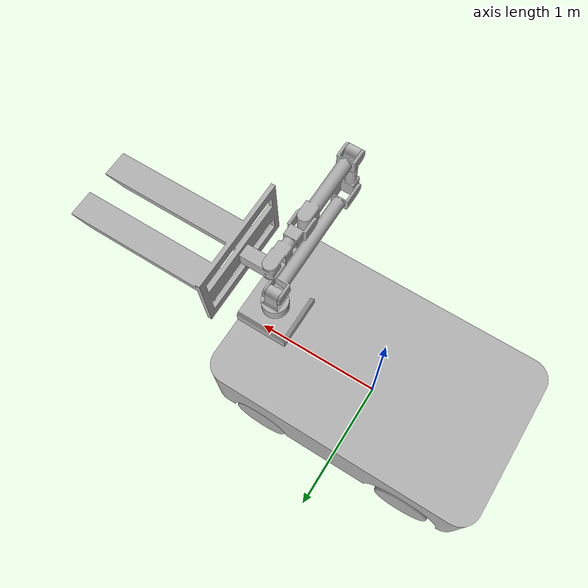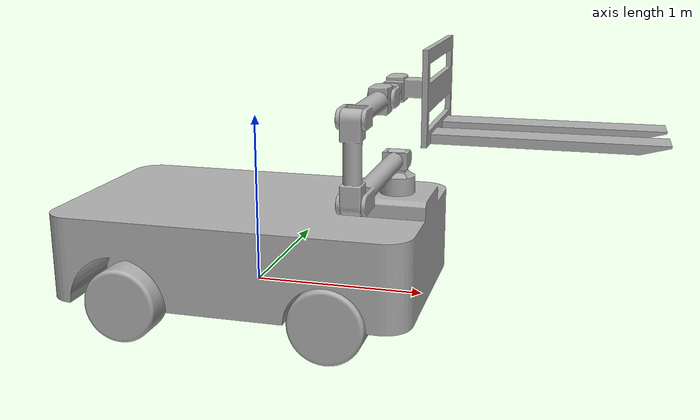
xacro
<?xml version="1.0" ?>
<robot name="forklift_robot" xmlns:xacro="http://www.ros.org/wiki/xacro">

<xacro:include filename="$(find forklift_robot_description)/urdf/materials.xacro" />
<xacro:include filename="$(find forklift_robot_description)/urdf/forklift_robot.trans" />
<xacro:include filename="$(find forklift_robot_description)/urdf/forklift_robot.gazebo" />
<link name="base_link">
  <inertial>
    <origin xyz="0.04023799417719452 2.4525300764303177e-16 0.27062069281074946" rpy="0 0 0"/>
    <mass value="109.05654375999"/>
    <inertia ixx="0.373447" iyy="1.713046" izz="9.537133" ixy="0.0" iyz="-0.0" ixz="0.00933119"/>
  </inertial>
  <visual>
    <origin xyz="0 0 0" rpy="0 0 0"/>
    <geometry>
      <mesh filename="package://forklift_robot_description/meshes/base_link.stl" scale="0.001 0.001 0.001"/>
    </geometry>
    <material name="silver"/>
  </visual>
  <collision>
    <origin xyz="0 0 0" rpy="0 0 0"/>
    <geometry>
      <mesh filename="package://forklift_robot_description/meshes/base_link.stl" scale="0.001 0.001 0.001"/>
    </geometry>
  </collision>
</link>

<link name="link_1_1">
  <inertial>
    <origin xyz="0.04799163613302859 -0.48926311595346855 9.992007221626409e-16" rpy="0 0 0"/>
    <mass value="0.79210110942673"/>
    <inertia ixx="0.000294" iyy="0.000158" izz="0.000328" ixy="-1e-06" iyz="-6e-06" ixz="-3.4e-05"/>
  </inertial>
  <visual>
    <origin xyz="-0.802 -0.0 -0.8" rpy="0 0 0"/>
    <geometry>
      <mesh filename="package://forklift_robot_description/meshes/link_1_1.stl" scale="0.001 0.001 0.001"/>
    </geometry>
    <material name="silver"/>
  </visual>
  <collision>
    <origin xyz="-0.802 -0.0 -0.8" rpy="0 0 0"/>
    <geometry>
      <mesh filename="package://forklift_robot_description/meshes/link_1_1.stl" scale="0.001 0.001 0.001"/>
    </geometry>
  </collision>
</link>

<link name="link_2_1">
  <inertial>
    <origin xyz="0.04801527849205145 7.951052003907222e-06 0.2000311805960242" rpy="0 0 0"/>
    <mass value="0.636986428830017"/>
    <inertia ixx="0.000294" iyy="0.000158" izz="0.000328" ixy="-1e-06" iyz="-6e-06" ixz="-3.4e-05"/>
  </inertial>
  <visual>
    <origin xyz="-0.802 1.0 -0.8" rpy="0 0 0"/>
    <geometry>
      <mesh filename="package://forklift_robot_description/meshes/link_2_1.stl" scale="0.001 0.001 0.001"/>
    </geometry>
    <material name="silver"/>
  </visual>
  <collision>
    <origin xyz="-0.802 1.0 -0.8" rpy="0 0 0"/>
    <geometry>
      <mesh filename="package://forklift_robot_description/meshes/link_2_1.stl" scale="0.001 0.001 0.001"/>
    </geometry>
  </collision>
</link>

<link name="link_3_1">
  <inertial>
    <origin xyz="0.04798957458703079 0.3625542865222178 -1.176836406102666e-14" rpy="0 0 0"/>
    <mass value="0.88579388998393"/>
    <inertia ixx="0.000294" iyy="0.000158" izz="0.000328" ixy="-1e-06" iyz="-6e-06" ixz="-3.4e-05"/>
  </inertial>
  <visual>
    <origin xyz="-0.802 1.0 -1.2" rpy="0 0 0"/>
    <geometry>
      <mesh filename="package://forklift_robot_description/meshes/link_3_1.stl" scale="0.001 0.001 0.001"/>
    </geometry>
    <material name="silver"/>
  </visual>
  <collision>
    <origin xyz="-0.802 1.0 -1.2" rpy="0 0 0"/>
    <geometry>
      <mesh filename="package://forklift_robot_description/meshes/link_3_1.stl" scale="0.001 0.001 0.001"/>
    </geometry>
  </collision>
</link>

<link name="link_4_1">
  <inertial>
    <origin xyz="-0.047989862163200114 0.19822125424130696 1.0137836775614417e-05" rpy="0 0 0"/>
    <mass value="0.839673850383303"/>
    <inertia ixx="0.000294" iyy="0.000158" izz="0.000328" ixy="-1e-06" iyz="-6e-06" ixz="-3.4e-05"/>
  </inertial>
  <visual>
    <origin xyz="-0.898 0.4 -1.2" rpy="0 0 0"/>
    <geometry>
      <mesh filename="package://forklift_robot_description/meshes/link_4_1.stl" scale="0.001 0.001 0.001"/>
    </geometry>
    <material name="silver"/>
  </visual>
  <collision>
    <origin xyz="-0.898 0.4 -1.2" rpy="0 0 0"/>
    <geometry>
      <mesh filename="package://forklift_robot_description/meshes/link_4_1.stl" scale="0.001 0.001 0.001"/>
    </geometry>
  </collision>
</link>

<link name="link_5_1">
  <inertial>
    <origin xyz="0.08003886285179851 -1.2970589922740741e-05 -0.04801214338240478" rpy="0 0 0"/>
    <mass value="0.633132672522482"/>
    <inertia ixx="0.000294" iyy="0.000158" izz="0.000328" ixy="-1e-06" iyz="-6e-06" ixz="-3.4e-05"/>
  </inertial>
  <visual>
    <origin xyz="-0.85 0.0 -1.248" rpy="0 0 0"/>
    <geometry>
      <mesh filename="package://forklift_robot_description/meshes/link_5_1.stl" scale="0.001 0.001 0.001"/>
    </geometry>
    <material name="silver"/>
  </visual>
  <collision>
    <origin xyz="-0.85 0.0 -1.248" rpy="0 0 0"/>
    <geometry>
      <mesh filename="package://forklift_robot_description/meshes/link_5_1.stl" scale="0.001 0.001 0.001"/>
    </geometry>
  </collision>
</link>

<link name="link_6_1">
  <inertial>
    <origin xyz="0.4518032682817148 0.009999999999998925 -0.16720601381296496" rpy="0 0 0"/>
    <mass value="0.25015607092092"/>
    <inertia ixx="0.000294" iyy="0.000158" izz="0.000328" ixy="-1e-06" iyz="-6e-06" ixz="-3.4e-05"/>
  </inertial>
  <visual>
    <origin xyz="-1.052 0.0 -1.2" rpy="0 0 0"/>
    <geometry>
      <mesh filename="package://forklift_robot_description/meshes/link_6_1.stl" scale="0.001 0.001 0.001"/>
    </geometry>
    <material name="silver"/>
  </visual>
  <collision>
    <origin xyz="-1.052 0.0 -1.2" rpy="0 0 0"/>
    <geometry>
      <mesh filename="package://forklift_robot_description/meshes/link_6_1.stl" scale="0.001 0.001 0.001"/>
    </geometry>
  </collision>
</link>

<link name="arm_base_1">
  <inertial>
    <origin xyz="6.663484238389472e-06 5.680544369622464e-16 0.08518510752494468" rpy="0 0 0"/>
    <mass value="0.269722296455804"/>
    <inertia ixx="0.000294" iyy="0.000158" izz="0.000328" ixy="-1e-06" iyz="-6e-06" ixz="-3.4e-05"/>
  </inertial>
  <visual>
    <origin xyz="-0.85 -0.0 -0.602" rpy="0 0 0"/>
    <geometry>
      <mesh filename="package://forklift_robot_description/meshes/arm_base_1.stl" scale="0.001 0.001 0.001"/>
    </geometry>
    <material name="silver"/>
  </visual>
  <collision>
    <origin xyz="-0.85 -0.0 -0.602" rpy="0 0 0"/>
    <geometry>
      <mesh filename="package://forklift_robot_description/meshes/arm_base_1.stl" scale="0.001 0.001 0.001"/>
    </geometry>
  </collision>
</link>

<link name="left_rear_wheel_1">
  <inertial>
    <origin xyz="0.0 0.10074491716164286 3.6327738750962685e-17" rpy="0 0 0"/>
    <mass value="4.15770588809661"/>
    <inertia ixx="0.000294" iyy="0.000158" izz="0.000328" ixy="-1e-06" iyz="-6e-06" ixz="-3.4e-05"/>
  </inertial>
  <visual>
    <origin xyz="0.6 -0.45 -0.0" rpy="0 0 0"/>
    <geometry>
      <mesh filename="package://forklift_robot_description/meshes/left_rear_wheel_1.stl" scale="0.001 0.001 0.001"/>
    </geometry>
    <material name="silver"/>
  </visual>
  <collision>
    <origin xyz="0.6 -0.45 -0.0" rpy="0 0 0"/>
    <geometry>
      <mesh filename="package://forklift_robot_description/meshes/left_rear_wheel_1.stl" scale="0.001 0.001 0.001"/>
    </geometry>
  </collision>
</link>

<link name="left_front_wheel_1">
  <inertial>
    <origin xyz="0.0 0.10074491716164286 -1.7239418987856801e-16" rpy="0 0 0"/>
    <mass value="4.15770588809661"/>
    <inertia ixx="0.000294" iyy="0.000158" izz="0.000328" ixy="-1e-06" iyz="-6e-06" ixz="-3.4e-05"/>
  </inertial>
  <visual>
    <origin xyz="-0.6 -0.45 -0.0" rpy="0 0 0"/>
    <geometry>
      <mesh filename="package://forklift_robot_description/meshes/left_front_wheel_1.stl" scale="0.001 0.001 0.001"/>
    </geometry>
    <material name="silver"/>
  </visual>
  <collision>
    <origin xyz="-0.6 -0.45 -0.0" rpy="0 0 0"/>
    <geometry>
      <mesh filename="package://forklift_robot_description/meshes/left_front_wheel_1.stl" scale="0.001 0.001 0.001"/>
    </geometry>
  </collision>
</link>

<link name="right_front_wheel_1">
  <inertial>
    <origin xyz="0.0 -0.1007449171616433 -2.539314515774933e-16" rpy="0 0 0"/>
    <mass value="4.15770588809661"/>
    <inertia ixx="0.000294" iyy="0.000158" izz="0.000328" ixy="-1e-06" iyz="-6e-06" ixz="-3.4e-05"/>
  </inertial>
  <visual>
    <origin xyz="-0.6 0.45 -0.0" rpy="0 0 0"/>
    <geometry>
      <mesh filename="package://forklift_robot_description/meshes/right_front_wheel_1.stl" scale="0.001 0.001 0.001"/>
    </geometry>
    <material name="silver"/>
  </visual>
  <collision>
    <origin xyz="-0.6 0.45 -0.0" rpy="0 0 0"/>
    <geometry>
      <mesh filename="package://forklift_robot_description/meshes/right_front_wheel_1.stl" scale="0.001 0.001 0.001"/>
    </geometry>
  </collision>
</link>

<link name="right_rear_wheel_1">
  <inertial>
    <origin xyz="0.0 -0.1007449171616433 -4.076863084946332e-17" rpy="0 0 0"/>
    <mass value="4.15770588809661"/>
    <inertia ixx="0.000294" iyy="0.000158" izz="0.000328" ixy="-1e-06" iyz="-6e-06" ixz="-3.4e-05"/>
  </inertial>
  <visual>
    <origin xyz="0.6 0.45 -0.0" rpy="0 0 0"/>
    <geometry>
      <mesh filename="package://forklift_robot_description/meshes/right_rear_wheel_1.stl" scale="0.001 0.001 0.001"/>
    </geometry>
    <material name="silver"/>
  </visual>
  <collision>
    <origin xyz="0.6 0.45 -0.0" rpy="0 0 0"/>
    <geometry>
      <mesh filename="package://forklift_robot_description/meshes/right_rear_wheel_1.stl" scale="0.001 0.001 0.001"/>
    </geometry>
  </collision>
</link>

<joint name="l2" type="continuous">
  <origin xyz="-0.048 0.0 0.198" rpy="0 0 0"/>
  <parent link="arm_base_1"/>
  <child link="link_1_1"/>
  <axis xyz="-1.0 -0.0 -0.0"/>
</joint>

<joint name="l3" type="continuous">
  <origin xyz="0.0 -1.0 0.0" rpy="0 0 0"/>
  <parent link="link_1_1"/>
  <child link="link_2_1"/>
  <axis xyz="1.0 0.0 0.0"/>
</joint>

<joint name="l4" type="continuous">
  <origin xyz="0.0 0.0 0.4" rpy="0 0 0"/>
  <parent link="link_2_1"/>
  <child link="link_3_1"/>
  <axis xyz="-1.0 -0.0 -0.0"/>
</joint>

<joint name="l5" type="continuous">
  <origin xyz="0.096 0.6 0.0" rpy="0 0 0"/>
  <parent link="link_3_1"/>
  <child link="link_4_1"/>
  <axis xyz="1.0 0.0 0.0"/>
</joint>

<joint name="l6" type="continuous">
  <origin xyz="-0.048 0.4 0.048" rpy="0 0 0"/>
  <parent link="link_4_1"/>
  <child link="link_5_1"/>
  <axis xyz="0.0 -0.0 -1.0"/>
</joint>

<joint name="forkjoint" type="fixed">
  <origin xyz="0.202 0.0 -0.048" rpy="0 0 0"/>
  <parent link="link_5_1"/>
  <child link="link_6_1"/>
</joint>

<joint name="l1" type="continuous">
  <origin xyz="0.85 0.0 0.602" rpy="0 0 0"/>
  <parent link="base_link"/>
  <child link="arm_base_1"/>
  <axis xyz="0.0 0.0 1.0"/>
</joint>

<joint name="backleft" type="continuous">
  <origin xyz="-0.6 0.45 0.0" rpy="0 0 0"/>
  <parent link="base_link"/>
  <child link="left_rear_wheel_1"/>
  <axis xyz="0.0 -1.0 0.0"/>
</joint>

<joint name="frontleft" type="continuous">
  <origin xyz="0.6 0.45 0.0" rpy="0 0 0"/>
  <parent link="base_link"/>
  <child link="left_front_wheel_1"/>
  <axis xyz="0.0 -1.0 0.0"/>
</joint>

<joint name="frontright" type="continuous">
  <origin xyz="0.6 -0.45 0.0" rpy="0 0 0"/>
  <parent link="base_link"/>
  <child link="right_front_wheel_1"/>
  <axis xyz="0.0 -1.0 0.0"/>
</joint>

<joint name="backright" type="continuous">
  <origin xyz="-0.6 -0.45 0.0" rpy="0 0 0"/>
  <parent link="base_link"/>
  <child link="right_rear_wheel_1"/>
  <axis xyz="0.0 -1.0 0.0"/>
</joint>

</robot>

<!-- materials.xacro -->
<robot name="forklift_robot" xmlns:xacro="http://www.ros.org/wiki/xacro" >

<material name="silver">
  <color rgba="0.700 0.700 0.700 1.000"/>
</material>

</robot>

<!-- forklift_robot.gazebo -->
<robot name="forklift_robot" xmlns:xacro="http://www.ros.org/wiki/xacro" >

<xacro:property name="body_color" value="Gazebo/Silver" />

<gazebo>
  <plugin name="control" filename="libgazebo_ros_control.so"/>
</gazebo>

<gazebo>
  <plugin name="differential_drive_controller" filename="libgazebo_ros_diff_drive.so">
    <!-- Plugin update rate in Hz -->
    <updateRate>30</updateRate>
    <!-- Name of left joint, defaults to `left_joint` -->
    <leftJoint>frontleft</leftJoint>
    <!-- Name of right joint, defaults to `right_joint` -->
    <rightJoint>frontright</rightJoint>
    <!-- The distance from the center of one wheel to the other, in meters, defaults to 0.34 m -->
    <wheelSeparation>1.2</wheelSeparation>
    <!-- Diameter of the wheels, in meters, defaults to 0.15 m -->
    <wheelDiameter>0.43</wheelDiameter>
    <!-- Wheel acceleration, in rad/s^2, defaults to 0.0 rad/s^2 -->
    <wheelAcceleration>1.0</wheelAcceleration>
    <!-- Maximum torque which the wheels can produce, in Nm, defaults to 5 Nm -->
    <wheelTorque>20</wheelTorque>
    <!-- Topic to receive geometry_msgs/Twist message commands, defaults to `cmd_vel` -->
    <commandTopic>cmd_vel</commandTopic>
    <!-- Topic to publish nav_msgs/Odometry messages, defaults to `odom` -->
    <odometryTopic>odom</odometryTopic>
    <!-- Odometry frame, defaults to `odom` -->
    <odometryFrame>odom</odometryFrame>
    <!-- Robot frame to calculate odometry from, defaults to `base_footprint` -->
    <robotBaseFrame>base_link</robotBaseFrame>
    <!-- Odometry source, 0 for ENCODER, 1 for WORLD, defaults to WORLD -->
    <odometrySource>1</odometrySource>
    <!-- Set to true to publish transforms for the wheel links, defaults to false -->
    <publishWheelTF>true</publishWheelTF>
    <!-- Set to true to publish transforms for the odometry, defaults to true -->
    <publishOdom>true</publishOdom>
    <!-- Set to true to publish sensor_msgs/JointState on /joint_states for the wheel joints, defaults to false -->
    <publishWheelJointState>true</publishWheelJointState>
    <!-- Set to true to swap right and left wheels, defaults to true -->
    <legacyMode>false</legacyMode>
  </plugin>
</gazebo>

<gazebo reference="base_link">
  <material>${body_color}</material>
  <mu1>0.2</mu1>
  <mu2>0.2</mu2>
  <selfCollide>true</selfCollide>
  <gravity>true</gravity>
</gazebo>

<gazebo reference="link_1_1">
  <material>${body_color}</material>
  <mu1>0.2</mu1>
  <mu2>0.2</mu2>
  <selfCollide>true</selfCollide>
</gazebo>

<gazebo reference="link_2_1">
  <material>${body_color}</material>
  <mu1>0.2</mu1>
  <mu2>0.2</mu2>
  <selfCollide>true</selfCollide>
</gazebo>

<gazebo reference="link_3_1">
  <material>${body_color}</material>
  <mu1>0.2</mu1>
  <mu2>0.2</mu2>
  <selfCollide>true</selfCollide>
</gazebo>

<gazebo reference="link_4_1">
  <material>${body_color}</material>
  <mu1>0.2</mu1>
  <mu2>0.2</mu2>
  <selfCollide>true</selfCollide>
</gazebo>

<gazebo reference="link_5_1">
  <material>${body_color}</material>
  <mu1>0.2</mu1>
  <mu2>0.2</mu2>
  <selfCollide>true</selfCollide>
</gazebo>

<gazebo reference="link_6_1">
  <material>${body_color}</material>
  <mu1>0.2</mu1>
  <mu2>0.2</mu2>
  <selfCollide>true</selfCollide>
</gazebo>

<gazebo reference="arm_base_1">
  <material>${body_color}</material>
  <mu1>0.2</mu1>
  <mu2>0.2</mu2>
  <selfCollide>true</selfCollide>
</gazebo>

<gazebo reference="left_rear_wheel_1">
  <material>${body_color}</material>
  <mu1>0.2</mu1>
  <mu2>0.2</mu2>
  <selfCollide>true</selfCollide>
</gazebo>

<gazebo reference="left_front_wheel_1">
  <material>${body_color}</material>
  <mu1>0.2</mu1>
  <mu2>0.2</mu2>
  <selfCollide>true</selfCollide>
</gazebo>

<gazebo reference="right_front_wheel_1">
  <material>${body_color}</material>
  <mu1>0.2</mu1>
  <mu2>0.2</mu2>
  <selfCollide>true</selfCollide>
</gazebo>

<gazebo reference="right_rear_wheel_1">
  <material>${body_color}</material>
  <mu1>0.2</mu1>
  <mu2>0.2</mu2>
  <selfCollide>true</selfCollide>
</gazebo>

</robot>
